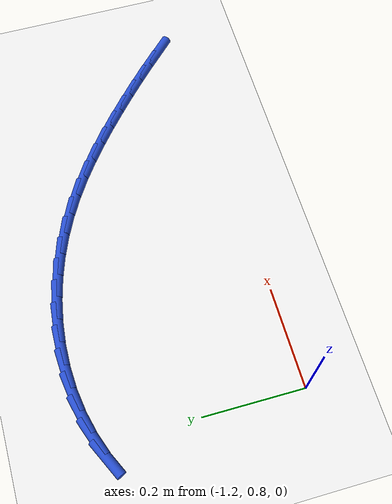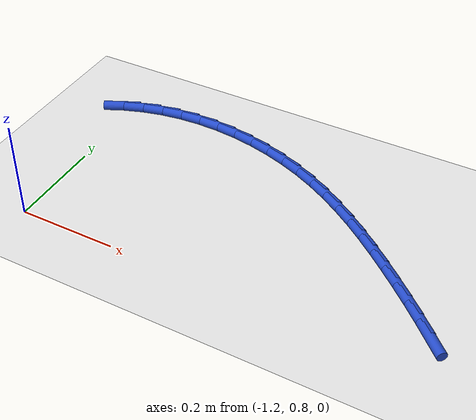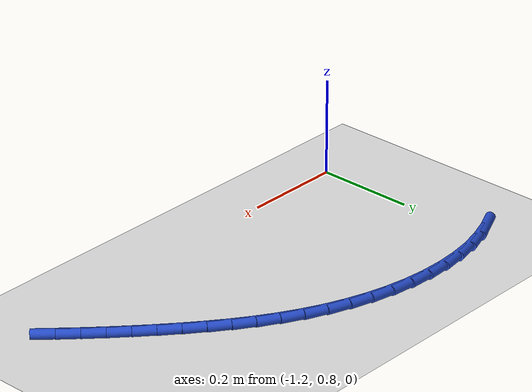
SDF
<sdf version="1.6">
 <world name="default">
  <model name="ground_plane">
   <static>1</static>
   <link name="link">
    <collision name="collision">
     <geometry><plane><normal>0 0 1</normal><size>100 100</size></plane></geometry>
     <surface><friction><ode><mu>100</mu><mu2>50</mu2></ode></friction></surface>
    </collision>
    <visual name="visual">
     <cast_shadows>0</cast_shadows>
     <geometry><plane><normal>0 0 1</normal><size>100 100</size></plane></geometry>
     <material>
      <script><uri>file://media/materials/scripts/gazebo.material</uri><name>Gazebo/WhiteGlow</name></script>
     </material>
    </visual>
   </link>
  </model>
  <model name="line">
   <link name="link_22">
    <pose>-0.4011987464731539 0.8628895187645036 0.01 0 1.57 -0.7876165341358324</pose>
    <collision name="collision">
     <geometry><cylinder><radius>0.01</radius><length>0.08</length></cylinder></geometry>
    </collision>
    <visual name="visual">
     <material>
      <script><name>Gazebo/Blue</name><uri>file://media/materials/scripts/gazebo.material</uri></script>
     </material>
     <geometry><cylinder><radius>0.01</radius><length>0.08</length></cylinder></geometry>
    </visual>
   </link>
   <link name="link_23">
    <pose>-0.4327872430254861 0.894618477136481 0.01 0 1.57 -0.7671957604122086</pose>
    <collision name="collision">
     <geometry><cylinder><radius>0.01</radius><length>0.08</length></cylinder></geometry>
    </collision>
    <visual name="visual">
     <material>
      <script><name>Gazebo/Blue</name><uri>file://media/materials/scripts/gazebo.material</uri></script>
     </material>
     <geometry><cylinder><radius>0.01</radius><length>0.08</length></cylinder></geometry>
    </visual>
   </link>
   <link name="link_24">
    <pose>-0.4649903834458474 0.9256701016555833 0.01 0 1.57 -0.7478212829336518</pose>
    <collision name="collision">
     <geometry><cylinder><radius>0.01</radius><length>0.08</length></cylinder></geometry>
    </collision>
    <visual name="visual">
     <material>
      <script><name>Gazebo/Blue</name><uri>file://media/materials/scripts/gazebo.material</uri></script>
     </material>
     <geometry><cylinder><radius>0.01</radius><length>0.08</length></cylinder></geometry>
    </visual>
   </link>
   <link name="link_25">
    <pose>-0.4977388477797301 0.9560454528511286 0.01 0 1.57 -0.7294476148972723</pose>
    <collision name="collision">
     <geometry><cylinder><radius>0.01</radius><length>0.08</length></cylinder></geometry>
    </collision>
    <visual name="visual">
     <material>
      <script><name>Gazebo/Blue</name><uri>file://media/materials/scripts/gazebo.material</uri></script>
     </material>
     <geometry><cylinder><radius>0.01</radius><length>0.08</length></cylinder></geometry>
    </visual>
   </link>
   <link name="link_26">
    <pose>-0.5309633232596699 0.9857455837131669 0.01 0 1.57 -0.7104372396460971</pose>
    <collision name="collision">
     <geometry><cylinder><radius>0.01</radius><length>0.08</length></cylinder></geometry>
    </collision>
    <visual name="visual">
     <material>
      <script><name>Gazebo/Blue</name><uri>file://media/materials/scripts/gazebo.material</uri></script>
     </material>
     <geometry><cylinder><radius>0.01</radius><length>0.08</length></cylinder></geometry>
    </visual>
   </link>
   <link name="link_27">
    <pose>-0.5646434299057079 1.0147202163492524 0.01 0 1.57 -0.6853254959440181</pose>
    <collision name="collision">
     <geometry><cylinder><radius>0.01</radius><length>0.08</length></cylinder></geometry>
    </collision>
    <visual name="visual">
     <material>
      <script><name>Gazebo/Blue</name><uri>file://media/materials/scripts/gazebo.material</uri></script>
     </material>
     <geometry><cylinder><radius>0.01</radius><length>0.08</length></cylinder></geometry>
    </visual>
   </link>
   <link name="link_28">
    <pose>-0.5989244939661343 1.0427452457182091 0.01 0 1.57 -0.6528852414257819</pose>
    <collision name="collision">
     <geometry><cylinder><radius>0.01</radius><length>0.08</length></cylinder></geometry>
    </collision>
    <visual name="visual">
     <material>
      <script><name>Gazebo/Blue</name><uri>file://media/materials/scripts/gazebo.material</uri></script>
     </material>
     <geometry><cylinder><radius>0.01</radius><length>0.08</length></cylinder></geometry>
    </visual>
   </link>
   <link name="link_29">
    <pose>-0.6339868840030394 1.0695598071135357 0.01 0 1.57 -0.6130763934777326</pose>
    <collision name="collision">
     <geometry><cylinder><radius>0.01</radius><length>0.08</length></cylinder></geometry>
    </collision>
    <visual name="visual">
     <material>
      <script><name>Gazebo/Blue</name><uri>file://media/materials/scripts/gazebo.material</uri></script>
     </material>
     <geometry><cylinder><radius>0.01</radius><length>0.08</length></cylinder></geometry>
    </visual>
   </link>
   <link name="link_30">
    <pose>-0.6700109685785137 1.0949030358287302 0.01 0 1.57 -0.5659598649628423</pose>
    <collision name="collision">
     <geometry><cylinder><radius>0.01</radius><length>0.08</length></cylinder></geometry>
    </collision>
    <visual name="visual">
     <material>
      <script><name>Gazebo/Blue</name><uri>file://media/materials/scripts/gazebo.material</uri></script>
     </material>
     <geometry><cylinder><radius>0.01</radius><length>0.08</length></cylinder></geometry>
    </visual>
   </link>
   <link name="link_31">
    <pose>-0.7071771162546483 1.1185140671572917 0.01 0 1.57 -0.5117604876687721</pose>
    <collision name="collision">
     <geometry><cylinder><radius>0.01</radius><length>0.08</length></cylinder></geometry>
    </collision>
    <visual name="visual">
     <material>
      <script><name>Gazebo/Blue</name><uri>file://media/materials/scripts/gazebo.material</uri></script>
     </material>
     <geometry><cylinder><radius>0.01</radius><length>0.08</length></cylinder></geometry>
    </visual>
   </link>
   <link name="link_32">
    <pose>-0.7456656955935332 1.1401320363927179 0.01 0 1.57 -0.45093228981901173</pose>
    <collision name="collision">
     <geometry><cylinder><radius>0.01</radius><length>0.08</length></cylinder></geometry>
    </collision>
    <visual name="visual">
     <material>
      <script><name>Gazebo/Blue</name><uri>file://media/materials/scripts/gazebo.material</uri></script>
     </material>
     <geometry><cylinder><radius>0.01</radius><length>0.08</length></cylinder></geometry>
    </visual>
   </link>
   <link name="link_33">
    <pose>-0.7856570748833374 1.1594960788533608 0.01 0 1.57 -0.38509504547642065</pose>
    <collision name="collision">
     <geometry><cylinder><radius>0.01</radius><length>0.08</length></cylinder></geometry>
    </collision>
    <visual name="visual">
     <material>
      <script><name>Gazebo/Blue</name><uri>file://media/materials/scripts/gazebo.material</uri></script>
     </material>
     <geometry><cylinder><radius>0.01</radius><length>0.08</length></cylinder></geometry>
    </visual>
   </link>
   <link name="link_34">
    <pose>-0.8272453328819714 1.176353158953246 0.01 0 1.57 -0.3177773301988854</pose>
    <collision name="collision">
     <geometry><cylinder><radius>0.01</radius><length>0.08</length></cylinder></geometry>
    </collision>
    <visual name="visual">
     <material>
      <script><name>Gazebo/Blue</name><uri>file://media/materials/scripts/gazebo.material</uri></script>
     </material>
     <geometry><cylinder><radius>0.01</radius><length>0.08</length></cylinder></geometry>
    </visual>
   </link>
   <link name="link_35">
    <pose>-0.8701944909436155 1.1904801873928645 0.01 0 1.57 -0.24887371815468787</pose>
    <collision name="collision">
     <geometry><cylinder><radius>0.01</radius><length>0.08</length></cylinder></geometry>
    </collision>
    <visual name="visual">
     <material>
      <script><name>Gazebo/Blue</name><uri>file://media/materials/scripts/gazebo.material</uri></script>
     </material>
     <geometry><cylinder><radius>0.01</radius><length>0.08</length></cylinder></geometry>
    </visual>
   </link>
   <link name="link_36">
    <pose>-0.9141896674780737 1.2016612337794539 0.01 0 1.57 -0.1774084540356563</pose>
    <collision name="collision">
     <geometry><cylinder><radius>0.01</radius><length>0.08</length></cylinder></geometry>
    </collision>
    <visual name="visual">
     <material>
      <script><name>Gazebo/Blue</name><uri>file://media/materials/scripts/gazebo.material</uri></script>
     </material>
     <geometry><cylinder><radius>0.01</radius><length>0.08</length></cylinder></geometry>
    </visual>
   </link>
   <link name="link_37">
    <pose>-0.9589159808951517 1.2096803677202537 0.01 0 1.57 -0.10245407456369696</pose>
    <collision name="collision">
     <geometry><cylinder><radius>0.01</radius><length>0.08</length></cylinder></geometry>
    </collision>
    <visual name="visual">
     <material>
      <script><name>Gazebo/Blue</name><uri>file://media/materials/scripts/gazebo.material</uri></script>
     </material>
     <geometry><cylinder><radius>0.01</radius><length>0.08</length></cylinder></geometry>
    </visual>
   </link>
   <link name="link_38">
    <pose>-1.0040585496046535 1.2143216588225014 0.01 0 1.57 -0.02314853000692653</pose>
    <collision name="collision">
     <geometry><cylinder><radius>0.01</radius><length>0.08</length></cylinder></geometry>
    </collision>
    <visual name="visual">
     <material>
      <script><name>Gazebo/Blue</name><uri>file://media/materials/scripts/gazebo.material</uri></script>
     </material>
     <geometry><cylinder><radius>0.01</radius><length>0.08</length></cylinder></geometry>
    </visual>
   </link>
   <link name="link_39">
    <pose>-1.0493024920163843 1.2153691766934367 0.01 0 1.57 0.06126365880684225</pose>
    <collision name="collision">
     <geometry><cylinder><radius>0.01</radius><length>0.08</length></cylinder></geometry>
    </collision>
    <visual name="visual">
     <material>
      <script><name>Gazebo/Blue</name><uri>file://media/materials/scripts/gazebo.material</uri></script>
     </material>
     <geometry><cylinder><radius>0.01</radius><length>0.08</length></cylinder></geometry>
    </visual>
   </link>
   <link name="link_40">
    <pose>-1.0943329265401494 1.2126069909402981 0.01 0 1.57 0.15136165774012475</pose>
    <collision name="collision">
     <geometry><cylinder><radius>0.01</radius><length>0.08</length></cylinder></geometry>
    </collision>
    <visual name="visual">
     <material>
      <script><name>Gazebo/Blue</name><uri>file://media/materials/scripts/gazebo.material</uri></script>
     </material>
     <geometry><cylinder><radius>0.01</radius><length>0.08</length></cylinder></geometry>
    </visual>
   </link>
   <link name="link_41">
    <pose>-1.138834971585753 1.205819171170324 0.01 0 1.57 0.24744958167394657</pose>
    <collision name="collision">
     <geometry><cylinder><radius>0.01</radius><length>0.08</length></cylinder></geometry>
    </collision>
    <visual name="visual">
     <material>
      <script><name>Gazebo/Blue</name><uri>file://media/materials/scripts/gazebo.material</uri></script>
     </material>
     <geometry><cylinder><radius>0.01</radius><length>0.08</length></cylinder></geometry>
    </visual>
   </link>
   <link name="link_42">
    <pose>-1.1824937455630005 1.1947897869907533 0.01 0 1.57 0.3493568819548985</pose>
    <collision name="collision">
     <geometry><cylinder><radius>0.01</radius><length>0.08</length></cylinder></geometry>
    </collision>
    <visual name="visual">
     <material>
      <script><name>Gazebo/Blue</name><uri>file://media/materials/scripts/gazebo.material</uri></script>
     </material>
     <geometry><cylinder><radius>0.01</radius><length>0.08</length></cylinder></geometry>
    </visual>
   </link>
   <link name="link_43">
    <pose>-1.2249957215201597 1.1793063233141308 0.01 0 1.57 0.44572407763373284</pose>
    <collision name="collision">
     <geometry><cylinder><radius>0.01</radius><length>0.08</length></cylinder></geometry>
    </collision>
    <visual name="visual">
     <material>
      <script><name>Gazebo/Blue</name><uri>file://media/materials/scripts/gazebo.material</uri></script>
     </material>
     <geometry><cylinder><radius>0.01</radius><length>0.08</length></cylinder></geometry>
    </visual>
   </link>
  </model>
 </world>
</sdf>
